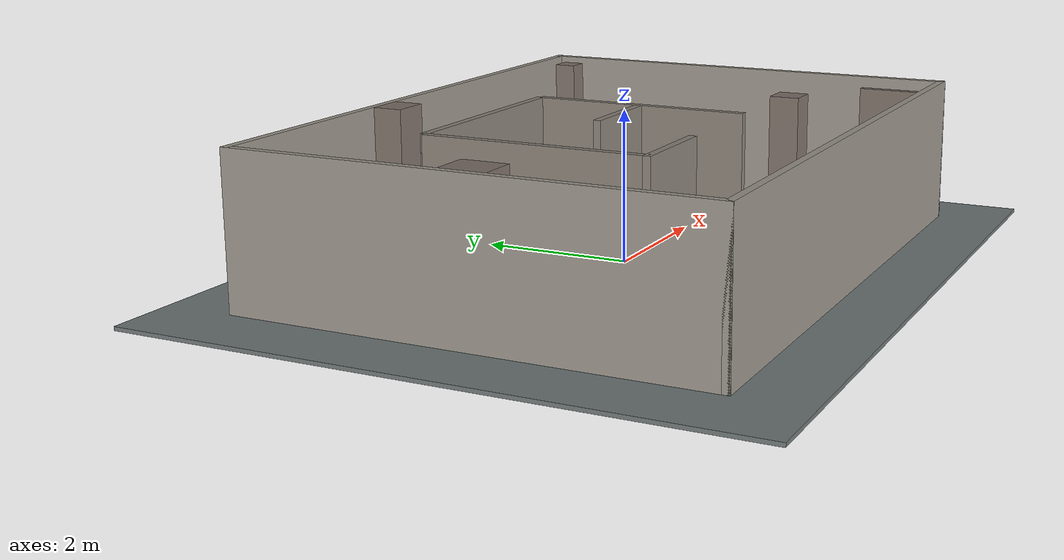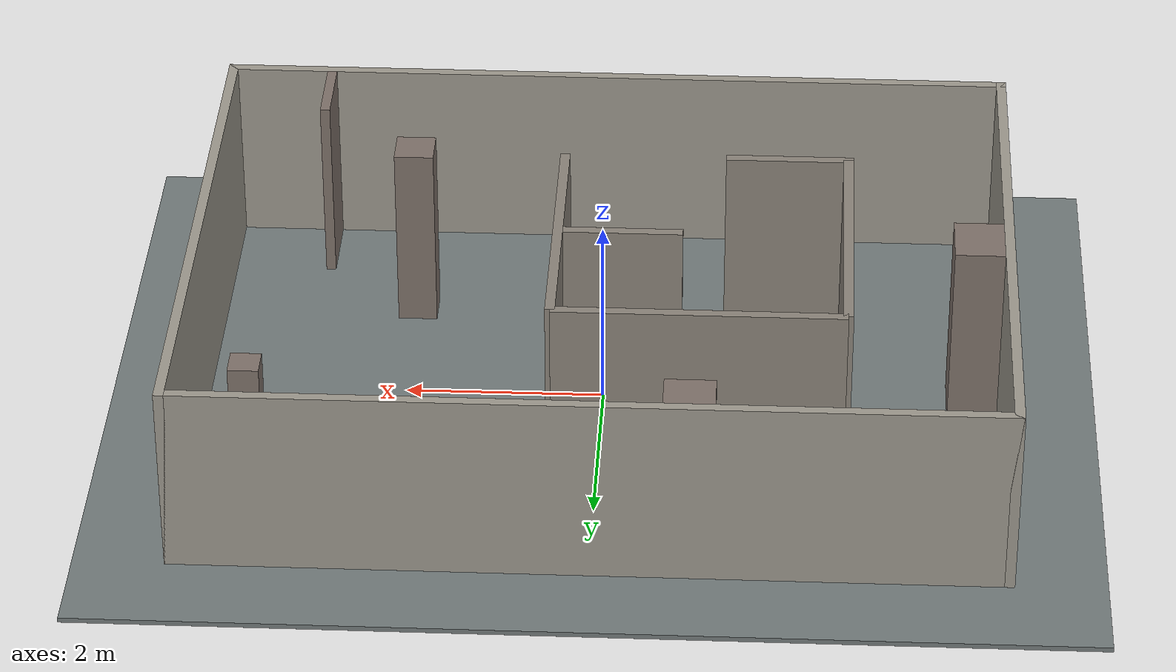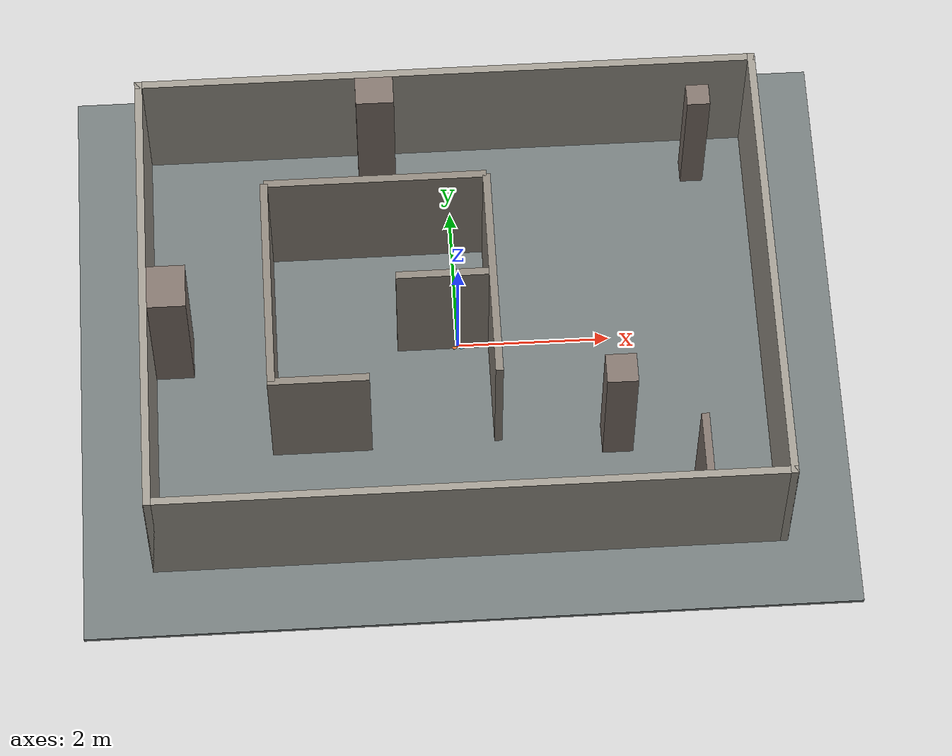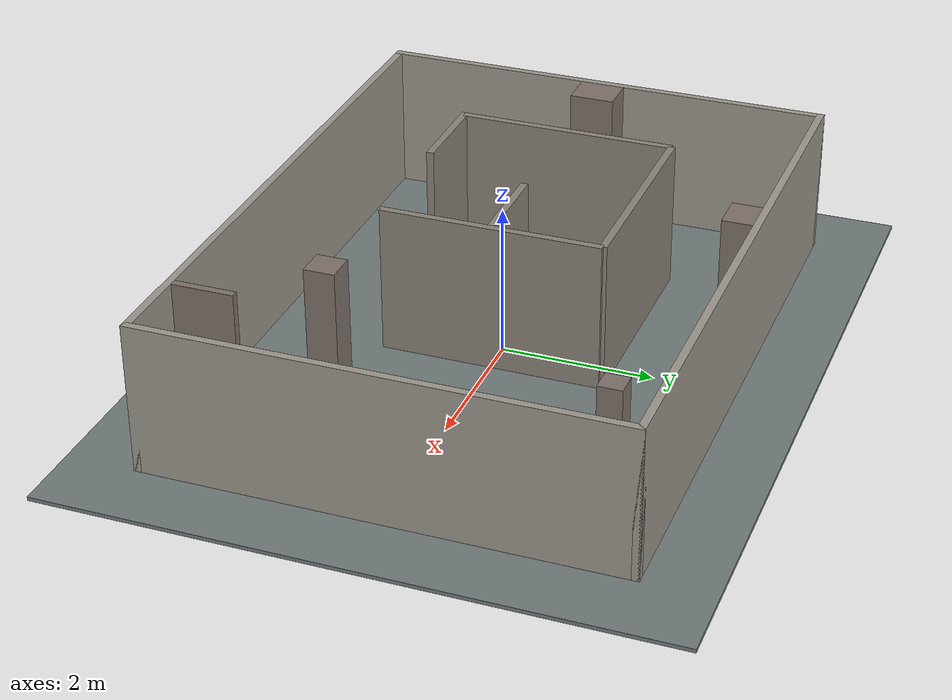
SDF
<?xml version="1.0"?>
<sdf version="1.10">
  <world name="cluttered_room">
    <plugin filename="gz-sim-physics-system" name="gz::sim::systems::Physics"/>
    <plugin filename="gz-sim-user-commands-system" name="gz::sim::systems::UserCommands"/>
    <plugin filename="gz-sim-scene-broadcaster-system" name="gz::sim::systems::SceneBroadcaster"/>
    <plugin filename="gz-sim-sensors-system" name="gz::sim::systems::Sensors">
      <render_engine>ogre2</render_engine>
    </plugin>
    <plugin filename="gz-sim-imu-system" name="gz::sim::systems::Imu"/>

    <gravity>0 0 -9.80665</gravity>
    <magnetic_field>6e-06 2.3e-05 -4.2e-05</magnetic_field>
    <atmosphere type="adiabatic"/>

    <light name="ceiling_light" type="directional">
      <pose>0 0 4 0 0 0</pose>
      <cast_shadows>true</cast_shadows>
      <direction>-0.3 0.4 -1</direction>
      <diffuse>0.9 0.86 0.75 1</diffuse>
    </light>

    <!-- Same floor as every other world here: top surface at z = 0.025. -->
    <model name="floor">
      <static>true</static>
      <link name="link">
        <collision name="collision">
          <geometry><box><size>10 8 0.05</size></box></geometry>
        </collision>
        <visual name="visual">
          <geometry><box><size>10 8 0.05</size></box></geometry>
          <material><diffuse>0.45 0.48 0.48 1</diffuse></material>
        </visual>
      </link>
    </model>

    <!-- Four walls, 0.1 m thick, their inner faces at x = +-4 and y = +-3. -->
    <model name="wall_x_plus">
      <static>true</static>
      <pose>4.05 0 1.0 0 0 0</pose>
      <link name="link">
        <collision name="collision"><geometry><box><size>0.1 6.2 2.0</size></box></geometry></collision>
        <visual name="visual">
          <geometry><box><size>0.1 6.2 2.0</size></box></geometry>
          <material><diffuse>0.62 0.60 0.56 1</diffuse></material>
        </visual>
      </link>
    </model>
    <model name="wall_x_minus">
      <static>true</static>
      <pose>-4.05 0 1.0 0 0 0</pose>
      <link name="link">
        <collision name="collision"><geometry><box><size>0.1 6.2 2.0</size></box></geometry></collision>
        <visual name="visual">
          <geometry><box><size>0.1 6.2 2.0</size></box></geometry>
          <material><diffuse>0.62 0.60 0.56 1</diffuse></material>
        </visual>
      </link>
    </model>
    <model name="wall_y_plus">
      <static>true</static>
      <pose>0 3.05 1.0 0 0 0</pose>
      <link name="link">
        <collision name="collision"><geometry><box><size>8.2 0.1 2.0</size></box></geometry></collision>
        <visual name="visual">
          <geometry><box><size>8.2 0.1 2.0</size></box></geometry>
          <material><diffuse>0.62 0.60 0.56 1</diffuse></material>
        </visual>
      </link>
    </model>
    <model name="wall_y_minus">
      <static>true</static>
      <pose>0 -3.05 1.0 0 0 0</pose>
      <link name="link">
        <collision name="collision"><geometry><box><size>8.2 0.1 2.0</size></box></geometry></collision>
        <visual name="visual">
          <geometry><box><size>8.2 0.1 2.0</size></box></geometry>
          <material><diffuse>0.62 0.60 0.56 1</diffuse></material>
        </visual>
      </link>
    </model>

    <model name="inner_x_minus">
      <static>true</static>
      <pose>-2.45 0.0 1.0 0 0 0</pose>
      <link name="link">
        <collision name="collision"><geometry><box><size>0.1 2.9 2.0</size></box></geometry></collision>
        <visual name="visual">
          <geometry><box><size>0.1 2.9 2.0</size></box></geometry>
          <material><diffuse>0.55 0.52 0.48 1</diffuse></material>
        </visual>
      </link>
    </model>
    <model name="inner_y_plus">
      <static>true</static>
      <pose>-1.0 1.45 1.0 0 0 0</pose>
      <link name="link">
        <collision name="collision"><geometry><box><size>2.9 0.1 2.0</size></box></geometry></collision>
        <visual name="visual">
          <geometry><box><size>2.9 0.1 2.0</size></box></geometry>
          <material><diffuse>0.55 0.52 0.48 1</diffuse></material>
        </visual>
      </link>
    </model>
    <model name="inner_x_plus">
      <static>true</static>
      <pose>0.45 0.0 1.0 0 0 0</pose>
      <link name="link">
        <collision name="collision"><geometry><box><size>0.1 2.9 2.0</size></box></geometry></collision>
        <visual name="visual">
          <geometry><box><size>0.1 2.9 2.0</size></box></geometry>
          <material><diffuse>0.55 0.52 0.48 1</diffuse></material>
        </visual>
      </link>
    </model>
    <model name="inner_y_minus_stub">
      <static>true</static>
      <pose>-1.85 -1.45 1.0 0 0 0</pose>
      <link name="link">
        <collision name="collision"><geometry><box><size>1.3 0.1 2.0</size></box></geometry></collision>
        <visual name="visual">
          <geometry><box><size>1.3 0.1 2.0</size></box></geometry>
          <material><diffuse>0.55 0.52 0.48 1</diffuse></material>
        </visual>
      </link>
    </model>

    <model name="inner_baffle">
      <static>true</static>
      <pose>-0.2 0.0 1.0 0 0 0</pose>
      <link name="link">
        <collision name="collision"><geometry><box><size>1.2 0.1 2.0</size></box></geometry></collision>
        <visual name="visual">
          <geometry><box><size>1.2 0.1 2.0</size></box></geometry>
          <material><diffuse>0.55 0.52 0.48 1</diffuse></material>
        </visual>
      </link>
    </model>

    <!-- A shadow that moves, for contrast with one that does not. -->
    <model name="pillar">
      <static>true</static>
      <pose>2.0 -1.5 1.0 0 0 0</pose>
      <link name="link">
        <collision name="collision"><geometry><box><size>0.4 0.4 2.0</size></box></geometry></collision>
        <visual name="visual">
          <geometry><box><size>0.4 0.4 2.0</size></box></geometry>
          <material><diffuse>0.5 0.45 0.42 1</diffuse></material>
        </visual>
      </link>
    </model>

    <!-- Against the x- wall: the left corridor narrows to 1.0 m here. -->
    <model name="crate_west">
      <static>true</static>
      <pose>-3.75 0.0 1.0 0 0 0</pose>
      <link name="link">
        <collision name="collision"><geometry><box><size>0.5 0.6 2.0</size></box></geometry></collision>
        <visual name="visual">
          <geometry><box><size>0.5 0.6 2.0</size></box></geometry>
          <material><diffuse>0.5 0.45 0.42 1</diffuse></material>
        </visual>
      </link>
    </model>
    <!-- Against the y+ wall: the top corridor narrows to 1.1 m here. -->
    <model name="cabinet_north">
      <static>true</static>
      <pose>-0.95 2.8 1.0 0 0 0</pose>
      <link name="link">
        <collision name="collision"><geometry><box><size>0.5 0.4 2.0</size></box></geometry></collision>
        <visual name="visual">
          <geometry><box><size>0.5 0.4 2.0</size></box></geometry>
          <material><diffuse>0.5 0.45 0.42 1</diffuse></material>
        </visual>
      </link>
    </model>
    <!-- A stub off the y- wall: walls off a 0.95 m alcove in the corner, 0.5 m short of the pillar. -->
    <model name="partition_se">
      <static>true</static>
      <pose>3.0 -2.6 1.0 0 0 0</pose>
      <link name="link">
        <collision name="collision"><geometry><box><size>0.1 0.8 2.0</size></box></geometry></collision>
        <visual name="visual">
          <geometry><box><size>0.1 0.8 2.0</size></box></geometry>
          <material><diffuse>0.5 0.45 0.42 1</diffuse></material>
        </visual>
      </link>
    </model>
    <!-- A second, thinner pillar in the +x +y corner: a shadow the start row cannot see past. -->
    <model name="pillar_ne">
      <static>true</static>
      <pose>3.3 2.5 1.0 0 0 0</pose>
      <link name="link">
        <collision name="collision"><geometry><box><size>0.3 0.3 2.0</size></box></geometry></collision>
        <visual name="visual">
          <geometry><box><size>0.3 0.3 2.0</size></box></geometry>
          <material><diffuse>0.5 0.45 0.42 1</diffuse></material>
        </visual>
      </link>
    </model>
    <include>
      <uri>model://openipc_cinewhoop</uri>
      <pose>0 0 0.035 0 0 0</pose>
    </include>
  </world>
</sdf>

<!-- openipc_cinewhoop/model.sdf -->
<sdf version="1.10">
  <model name="openipc_cinewhoop">
    <!-- World placement belongs to the including world, not the model. -->
    <pose>0 0 0 0 0 0</pose>
    <static>false</static>

    <!-- Publish rotor motion so motor mapping can be verified headlessly. -->
    <plugin filename="gz-sim-joint-state-publisher-system"
            name="gz::sim::systems::JointStatePublisher"/>

    <link name="base_link">
      <inertial>
        <mass>0.228</mass>
        <inertia>
          <ixx>0.00028</ixx>
          <iyy>0.00028</iyy>
          <izz>0.00048</izz>
          <ixy>0</ixy>
          <ixz>0</ixz>
          <iyz>0</iyz>
        </inertia>
      </inertial>
      <collision name="body_collision">
        <geometry><box><size>0.105 0.105 0.018</size></box></geometry>
      </collision>
      <visual name="body_visual">
        <geometry><box><size>0.105 0.105 0.018</size></box></geometry>
        <material><diffuse>0.04 0.045 0.05 1</diffuse></material>
      </visual>
    </link>

    <link name="front_lidar_link">
      <pose relative_to="base_link">0.046 0 0.050 0 0 0</pose>
      <inertial><mass>0.042</mass><inertia><ixx>0.0000078</ixx><iyy>0.0000078</iyy><izz>0.0000078</izz></inertia></inertial>
      <visual name="visual">
        <geometry><box><size>0.0386 0.0386 0.0333</size></box></geometry>
        <material><diffuse>0.24 0.24 0.26 1</diffuse></material>
      </visual>
      <sensor name="front_lidar" type="gpu_lidar">
        <gz_frame_id>front_lidar_link</gz_frame_id>
        <always_on>true</always_on>
        <update_rate>10</update_rate>
        <ray>
          <scan>
            <horizontal>
              <samples>360</samples>
              <resolution>1</resolution>
              <min_angle>-3.141593</min_angle>
              <max_angle>3.141593</max_angle>
            </horizontal>
            <vertical>
              <samples>1</samples>
              <resolution>1</resolution>
              <min_angle>0</min_angle>
              <max_angle>0</max_angle>
            </vertical>
          </scan>
          <range>
            <min>0.02</min>
            <max>12.0</max>
            <resolution>0.01</resolution>
          </range>
        </ray>
      </sensor>
    </link>
    <joint name="front_lidar_joint" type="fixed">
      <parent>base_link</parent>
      <child>front_lidar_link</child>
    </joint>

    <link name="rangefinder_link">
      <pose relative_to="base_link">0.020 0 -0.016 0 1.57079632679 0</pose>
      <inertial><mass>0.002</mass><inertia><ixx>0.0000001</ixx><iyy>0.0000001</iyy><izz>0.0000001</izz></inertia></inertial>
      <sensor name="down_range" type="gpu_lidar">
        <gz_frame_id>rangefinder_link</gz_frame_id>
        <always_on>true</always_on>
        <update_rate>20</update_rate>
        <ray>
          <scan>
            <horizontal>
              <samples>5</samples>
              <resolution>1</resolution>
              <min_angle>-0.0175</min_angle>
              <max_angle>0.0175</max_angle>
            </horizontal>
          </scan>
          <range>
            <min>0.05</min>
            <max>5.0</max>
            <resolution>0.01</resolution>
          </range>
        </ray>
      </sensor>
    </link>
    <joint name="rangefinder_joint" type="fixed">
      <parent>base_link</parent>
      <child>rangefinder_link</child>
    </joint>

    <link name="imu_link">
      <pose relative_to="base_link">0 0 0.018 0 0 0</pose>
      <inertial><mass>0.002</mass><inertia><ixx>0.0000001</ixx><iyy>0.0000001</iyy><izz>0.0000001</izz></inertia></inertial>
      <sensor name="imu" type="imu">
        <gz_frame_id>imu_link</gz_frame_id>
        <pose degrees="true">0 0 0 180 0 0</pose>
        <always_on>true</always_on>
        <!-- Iris runs its IMU at 1000 Hz; raising ours is worth doing once the
             rotor velocity loop is stable enough to benefit from it. -->
        <update_rate>100</update_rate>
      </sensor>
      <sensor name="imu_ros" type="imu">
        <gz_frame_id>imu_link</gz_frame_id>
        <always_on>true</always_on>
        <update_rate>100</update_rate>
      </sensor>
    </link>
    <joint name="imu_joint" type="fixed">
      <parent>base_link</parent>
      <child>imu_link</child>
    </joint>

    <link name="camera_link">
      <pose relative_to="base_link">0.068 0 0.012 0 0 0</pose>
      <inertial><mass>0.006</mass><inertia><ixx>0.0000005</ixx><iyy>0.0000005</iyy><izz>0.0000005</izz></inertia></inertial>
      <visual name="visual">
        <geometry><box><size>0.026 0.022 0.020</size></box></geometry>
        <material><diffuse>0.08 0.08 0.08 1</diffuse></material>
      </visual>
      <sensor name="front_camera" type="camera">
        <gz_frame_id>camera_optical_frame</gz_frame_id>
        <pose>0.014 0 0 0 0 0</pose>
        <always_on>true</always_on>
        <update_rate>15</update_rate>
        <camera>
          <horizontal_fov>1.3962634</horizontal_fov>
          <image>
            <width>640</width>
            <height>480</height>
            <format>R8G8B8</format>
          </image>
          <clip>
            <near>0.05</near>
            <far>20</far>
          </clip>
        </camera>
      </sensor>
    </link>
    <joint name="camera_joint" type="fixed">
      <parent>base_link</parent>
      <child>camera_link</child>
    </joint>

    <link name="motor_1"><pose relative_to="base_link">0.04525 -0.04525 0.012 0 0 0</pose><inertial><mass>0.005</mass><inertia><ixx>0.0000002</ixx><iyy>0.0000002</iyy><izz>0.0000002</izz></inertia></inertial></link>
    <joint name="motor_1_joint" type="fixed"><parent>base_link</parent><child>motor_1</child></joint>
    <link name="motor_2"><pose relative_to="base_link">-0.04525 0.04525 0.012 0 0 0</pose><inertial><mass>0.005</mass><inertia><ixx>0.0000002</ixx><iyy>0.0000002</iyy><izz>0.0000002</izz></inertia></inertial></link>
    <joint name="motor_2_joint" type="fixed"><parent>base_link</parent><child>motor_2</child></joint>
    <link name="motor_3"><pose relative_to="base_link">0.04525 0.04525 0.012 0 0 0</pose><inertial><mass>0.005</mass><inertia><ixx>0.0000002</ixx><iyy>0.0000002</iyy><izz>0.0000002</izz></inertia></inertial></link>
    <joint name="motor_3_joint" type="fixed"><parent>base_link</parent><child>motor_3</child></joint>
    <link name="motor_4"><pose relative_to="base_link">-0.04525 -0.04525 0.012 0 0 0</pose><inertial><mass>0.005</mass><inertia><ixx>0.0000002</ixx><iyy>0.0000002</iyy><izz>0.0000002</izz></inertia></inertial></link>
    <joint name="motor_4_joint" type="fixed"><parent>base_link</parent><child>motor_4</child></joint>

    <!-- 3 inch propellers, ordered like ArduPilot's Quad X reference model. -->
    <link name="rotor_0"><pose relative_to="base_link">0.04525 -0.04525 0.025 0 0 0</pose><inertial><mass>0.0015</mass><inertia><ixx>0.0000004</ixx><iyy>0.0000004</iyy><izz>0.0000008</izz></inertia></inertial><visual name="prop"><geometry><cylinder><radius>0.0381</radius><length>0.002</length></cylinder></geometry><material><diffuse>0.2 0.7 1 1</diffuse></material></visual></link>
    <joint name="rotor_0_joint" type="revolute"><parent>base_link</parent><child>rotor_0</child><axis><xyz>0 0 1</xyz><limit><lower>-1e16</lower><upper>1e16</upper></limit><dynamics><damping>0.0002</damping></dynamics></axis></joint>
    <link name="rotor_1"><pose relative_to="base_link">-0.04525 0.04525 0.025 0 0 0</pose><inertial><mass>0.0015</mass><inertia><ixx>0.0000004</ixx><iyy>0.0000004</iyy><izz>0.0000008</izz></inertia></inertial><visual name="prop"><geometry><cylinder><radius>0.0381</radius><length>0.002</length></cylinder></geometry><material><diffuse>0.2 0.7 1 1</diffuse></material></visual></link>
    <joint name="rotor_1_joint" type="revolute"><parent>base_link</parent><child>rotor_1</child><axis><xyz>0 0 1</xyz><limit><lower>-1e16</lower><upper>1e16</upper></limit><dynamics><damping>0.0002</damping></dynamics></axis></joint>
    <link name="rotor_2"><pose relative_to="base_link">0.04525 0.04525 0.025 0 0 0</pose><inertial><mass>0.0015</mass><inertia><ixx>0.0000004</ixx><iyy>0.0000004</iyy><izz>0.0000008</izz></inertia></inertial><visual name="prop"><geometry><cylinder><radius>0.0381</radius><length>0.002</length></cylinder></geometry><material><diffuse>1 0.45 0.2 1</diffuse></material></visual></link>
    <joint name="rotor_2_joint" type="revolute"><parent>base_link</parent><child>rotor_2</child><axis><xyz>0 0 1</xyz><limit><lower>-1e16</lower><upper>1e16</upper></limit><dynamics><damping>0.0002</damping></dynamics></axis></joint>
    <link name="rotor_3"><pose relative_to="base_link">-0.04525 -0.04525 0.025 0 0 0</pose><inertial><mass>0.0015</mass><inertia><ixx>0.0000004</ixx><iyy>0.0000004</iyy><izz>0.0000008</izz></inertia></inertial><visual name="prop"><geometry><cylinder><radius>0.0381</radius><length>0.002</length></cylinder></geometry><material><diffuse>1 0.45 0.2 1</diffuse></material></visual></link>
    <joint name="rotor_3_joint" type="revolute"><parent>base_link</parent><child>rotor_3</child><axis><xyz>0 0 1</xyz><limit><lower>-1e16</lower><upper>1e16</upper></limit><dynamics><damping>0.0002</damping></dynamics></axis></joint>

    <!-- Two blade surfaces per propeller. The paired forward directions give
         a rotating propeller lift without adding collisions to the ducts. -->

    <!--
      The ArduPilot Gazebo plugin exchanges IMU and pose state as JSON with
      SITL and drives the four aerodynamic propeller joints below.
    -->
    <plugin filename="gz-sim-multicopter-motor-model-system"
            name="gz::sim::systems::MulticopterMotorModel">
      <robotNamespace>openipc_cinewhoop</robotNamespace>
      <commandSubTopic>command/motor_speed</commandSubTopic>
      <jointName>rotor_0_joint</jointName>
      <linkName>rotor_0</linkName>
      <actuator_number>0</actuator_number>
      <turningDirection>ccw</turningDirection>
      <motorType>velocity</motorType>
      <maxRotVelocity>3980</maxRotVelocity>
      <motorConstant>2.20e-07</motorConstant>
      <momentConstant>0.013</momentConstant>
      <timeConstantUp>0.0125</timeConstantUp>
      <timeConstantDown>0.025</timeConstantDown>
      <rotorDragCoefficient>1.0e-05</rotorDragCoefficient>
      <rollingMomentCoefficient>1.0e-07</rollingMomentCoefficient>
      <rotorVelocitySlowdownSim>10</rotorVelocitySlowdownSim>
    </plugin>
    <plugin filename="gz-sim-multicopter-motor-model-system"
            name="gz::sim::systems::MulticopterMotorModel">
      <robotNamespace>openipc_cinewhoop</robotNamespace>
      <commandSubTopic>command/motor_speed</commandSubTopic>
      <jointName>rotor_1_joint</jointName>
      <linkName>rotor_1</linkName>
      <actuator_number>1</actuator_number>
      <turningDirection>ccw</turningDirection>
      <motorType>velocity</motorType>
      <maxRotVelocity>3980</maxRotVelocity>
      <motorConstant>2.20e-07</motorConstant>
      <momentConstant>0.013</momentConstant>
      <timeConstantUp>0.0125</timeConstantUp>
      <timeConstantDown>0.025</timeConstantDown>
      <rotorDragCoefficient>1.0e-05</rotorDragCoefficient>
      <rollingMomentCoefficient>1.0e-07</rollingMomentCoefficient>
      <rotorVelocitySlowdownSim>10</rotorVelocitySlowdownSim>
    </plugin>
    <plugin filename="gz-sim-multicopter-motor-model-system"
            name="gz::sim::systems::MulticopterMotorModel">
      <robotNamespace>openipc_cinewhoop</robotNamespace>
      <commandSubTopic>command/motor_speed</commandSubTopic>
      <jointName>rotor_2_joint</jointName>
      <linkName>rotor_2</linkName>
      <actuator_number>2</actuator_number>
      <turningDirection>cw</turningDirection>
      <motorType>velocity</motorType>
      <maxRotVelocity>3980</maxRotVelocity>
      <motorConstant>2.20e-07</motorConstant>
      <momentConstant>0.013</momentConstant>
      <timeConstantUp>0.0125</timeConstantUp>
      <timeConstantDown>0.025</timeConstantDown>
      <rotorDragCoefficient>1.0e-05</rotorDragCoefficient>
      <rollingMomentCoefficient>1.0e-07</rollingMomentCoefficient>
      <rotorVelocitySlowdownSim>10</rotorVelocitySlowdownSim>
    </plugin>
    <plugin filename="gz-sim-multicopter-motor-model-system"
            name="gz::sim::systems::MulticopterMotorModel">
      <robotNamespace>openipc_cinewhoop</robotNamespace>
      <commandSubTopic>command/motor_speed</commandSubTopic>
      <jointName>rotor_3_joint</jointName>
      <linkName>rotor_3</linkName>
      <actuator_number>3</actuator_number>
      <turningDirection>cw</turningDirection>
      <motorType>velocity</motorType>
      <maxRotVelocity>3980</maxRotVelocity>
      <motorConstant>2.20e-07</motorConstant>
      <momentConstant>0.013</momentConstant>
      <timeConstantUp>0.0125</timeConstantUp>
      <timeConstantDown>0.025</timeConstantDown>
      <rotorDragCoefficient>1.0e-05</rotorDragCoefficient>
      <rollingMomentCoefficient>1.0e-07</rollingMomentCoefficient>
      <rotorVelocitySlowdownSim>10</rotorVelocitySlowdownSim>
    </plugin>

    <plugin name="ArduPilotPlugin" filename="ArduPilotPlugin">
      <fdm_addr>127.0.0.1</fdm_addr>
      <fdm_port_in>9002</fdm_port_in>
      <connectionTimeoutMaxCount>5</connectionTimeoutMaxCount>
      <lock_step>1</lock_step>
      <no_time_sync>1</no_time_sync>

      <!-- Convert Gazebo ENU / FLU into ArduPilot NED / FRD. -->
      <modelXYZToAirplaneXForwardZDown degrees="true">0 0 0 180 0 0</modelXYZToAirplaneXForwardZDown>
      <gazeboXYZToNED degrees="true">0 0 0 180 0 90</gazeboXYZToNED>

      <imuName>imu_link::imu</imuName>

      <!-- Quad X mapping follows the Iris reference model, scaled for 3 in props. -->
      <control channel="0"><jointName>rotor_0_joint</jointName><multiplier>3980</multiplier><offset>0</offset><servo_min>1100</servo_min><servo_max>1900</servo_max><type>COMMAND</type><cmd_topic>/model/openipc_cinewhoop/joint/rotor_0_joint/cmd</cmd_topic></control>
      <control channel="1"><jointName>rotor_1_joint</jointName><multiplier>3980</multiplier><offset>0</offset><servo_min>1100</servo_min><servo_max>1900</servo_max><type>COMMAND</type><cmd_topic>/model/openipc_cinewhoop/joint/rotor_1_joint/cmd</cmd_topic></control>
      <control channel="2"><jointName>rotor_2_joint</jointName><multiplier>3980</multiplier><offset>0</offset><servo_min>1100</servo_min><servo_max>1900</servo_max><type>COMMAND</type><cmd_topic>/model/openipc_cinewhoop/joint/rotor_2_joint/cmd</cmd_topic></control>
      <control channel="3"><jointName>rotor_3_joint</jointName><multiplier>3980</multiplier><offset>0</offset><servo_min>1100</servo_min><servo_max>1900</servo_max><type>COMMAND</type><cmd_topic>/model/openipc_cinewhoop/joint/rotor_3_joint/cmd</cmd_topic></control>
    </plugin>
  </model>
</sdf>
